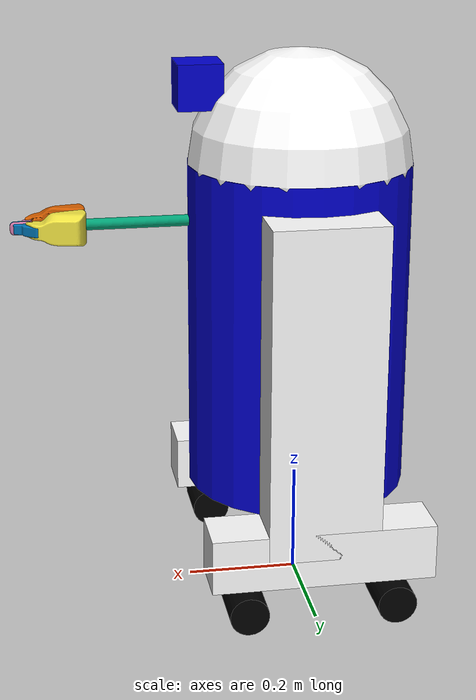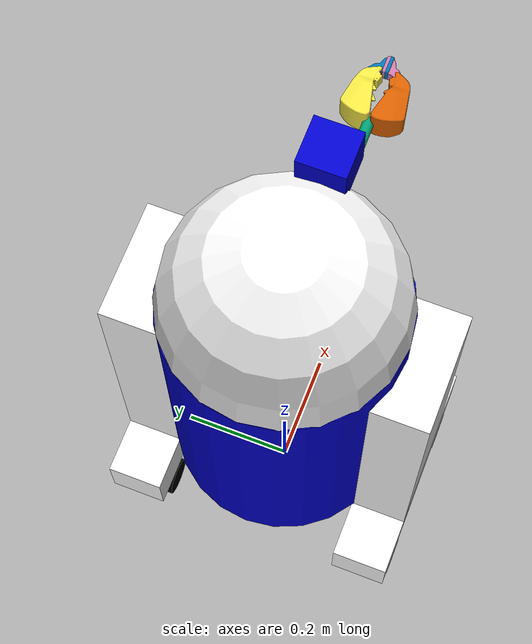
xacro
<?xml version="1.0"?>
<robot name="visual">

  <material name="blue">
    <color rgba="0 0 0.8 1"/>
  </material>
  <material name="black">
    <color rgba="0 0 0 1"/>
  </material>
  <material name="white">
    <color rgba="1 1 1 1"/>
  </material>

  <link name="base_link" />

  <joint name="base_to_body" type="fixed">
    <parent link="base_link"/>
    <child link="body_link"/>
    <origin xyz="0 0 0.5"/>
  </joint>

  <link name="body_link">
    <visual>
      <geometry>
        <cylinder length="0.6" radius="0.2"/>
      </geometry>
      <material name="blue"/>
    </visual>
    <collision>
      <geometry>
        <cylinder length="0.6" radius="0.2"/>
      </geometry>
    </collision>
    <inertial>
      <mass value="10"/>
      <inertia ixx="1e-3" ixy="0.0" ixz="0.0" iyy="1e-3" iyz="0.0" izz="1e-3"/>
    </inertial>
  </link>

  <link name="right_leg">
    <visual>
      <geometry>
        <box size="0.6 0.1 0.2"/>
      </geometry>
      <origin rpy="0 1.57075 0" xyz="0 0 -0.3"/>
      <material name="white"/>
    </visual>
    <collision>
      <geometry>
        <box size="0.6 0.1 0.2"/>
      </geometry>
      <origin rpy="0 1.57075 0" xyz="0 0 -0.3"/>
    </collision>
    <inertial>
      <mass value="1"/>
      <inertia ixx="1e-5" ixy="0.0" ixz="0.0" iyy="1e-5" iyz="0.0" izz="1e-5"/>
    </inertial>
  </link>

  <joint name="base_to_right_leg" type="fixed">
    <parent link="body_link"/>
    <child link="right_leg"/>
    <origin xyz="0 -0.22 0.25"/>
  </joint>

  <link name="right_base">
    <visual>
      <geometry>
        <box size="0.4 0.1 0.1"/>
      </geometry>
      <material name="white"/>
    </visual>
    <collision>
      <geometry>
        <box size="0.4 0.1 0.1"/>
      </geometry>
      <material name="white"/>
    </collision>
    <inertial>
      <mass value="1"/>
      <inertia ixx="1e-5" ixy="0.0" ixz="0.0" iyy="1e-5" iyz="0.0" izz="1e-5"/>
    </inertial>
  </link>

  <joint name="right_base_joint" type="fixed">
    <parent link="right_leg"/>
    <child link="right_base"/>
    <origin xyz="0 0 -0.6"/>
  </joint>

  <link name="right_front_wheel">
    <visual>
      <origin rpy="1.57075 0 0" xyz="0 0 0"/>
      <geometry>
        <cylinder length="0.1" radius="0.035"/>
      </geometry>
      <material name="black"/>
    </visual>
    <collision>
      <origin rpy="1.57075 0 0" xyz="0 0 0"/>
      <geometry>
        <cylinder length="0.1" radius="0.035"/>
      </geometry>
      <material name="black"/>
    </collision>
    <inertial>
      <mass value="1"/>
      <inertia ixx="1e-5" ixy="0.0" ixz="0.0" iyy="1e-5" iyz="0.0" izz="1e-5"/>
    </inertial>
 </link>

  <joint name="right_front_wheel_joint" type="continuous">
    <parent link="right_base"/>
    <child link="right_front_wheel"/>
    <origin rpy="0 0 0" xyz="0.133333333333 0 -0.1"/>
    <axis xyz="0 1 0"/>
  </joint>

  <link name="right_back_wheel">
    <visual>
      <origin rpy="1.57075 0 0" xyz="0 0 0"/>
      <geometry>
        <cylinder length="0.1" radius="0.035"/>
      </geometry>
      <material name="black"/>
    </visual>
    <collision>
      <origin rpy="1.57075 0 0" xyz="0 0 0"/>
      <geometry>
        <cylinder length="0.1" radius="0.035"/>
      </geometry>
    </collision>
    <inertial>
      <mass value="1"/>
      <inertia ixx="1e-5" ixy="0.0" ixz="0.0" iyy="1e-5" iyz="0.0" izz="1e-5"/>
    </inertial>

  </link>

  <joint name="right_back_wheel_joint" type="continuous">
    <parent link="right_base"/>
    <child link="right_back_wheel"/>
    <origin rpy="0 0 0" xyz="-0.133333333333 0 -0.1"/>
    <axis xyz="0 1 0"/>
  </joint>

  <link name="left_leg">
    <visual>
      <geometry>
        <box size="0.6 0.1 0.2"/>
      </geometry>
      <origin rpy="0 1.57075 0" xyz="0 0 -0.3"/>
      <material name="white"/>
    </visual>
    <collision>
      <geometry>
        <box size="0.6 0.1 0.2"/>
      </geometry>
      <origin rpy="0 1.57075 0" xyz="0 0 -0.3"/>
    </collision>
    <inertial>
      <mass value="1"/>
      <inertia ixx="1e-5" ixy="0.0" ixz="0.0" iyy="1e-5" iyz="0.0" izz="1e-5"/>
    </inertial>

  </link>

  <joint name="base_to_left_leg" type="fixed">
    <parent link="body_link"/>
    <child link="left_leg"/>
    <origin xyz="0 0.22 0.25"/>
  </joint>

  <link name="left_base">
    <visual>
      <geometry>
        <box size="0.4 0.1 0.1"/>
      </geometry>
      <material name="white"/>
    </visual>
    <collision>
      <geometry>
        <box size="0.4 0.1 0.1"/>
      </geometry>
    </collision>
    <inertial>
      <mass value="1"/>
      <inertia ixx="1e-5" ixy="0.0" ixz="0.0" iyy="1e-5" iyz="0.0" izz="1e-5"/>
    </inertial>

  </link>

  <joint name="left_base_joint" type="fixed">
    <parent link="left_leg"/>
    <child link="left_base"/>
    <origin xyz="0 0 -0.6"/>
  </joint>

  <link name="left_front_wheel">
    <visual>
      <origin rpy="1.57075 0 0" xyz="0 0 0"/>
      <geometry>
        <cylinder length="0.1" radius="0.035"/>
      </geometry>
      <material name="black"/>
    </visual>
    <collision>
      <origin rpy="1.57075 0 0" xyz="0 0 0"/>
      <geometry>
        <cylinder length="0.1" radius="0.035"/>
      </geometry>
    </collision>
    <inertial>
      <mass value="1"/>
      <inertia ixx="1e-5" ixy="0.0" ixz="0.0" iyy="1e-5" iyz="0.0" izz="1e-5"/>
    </inertial>

  </link>

  <joint name="left_front_wheel_joint" type="continuous">
    <parent link="left_base"/>
    <child link="left_front_wheel"/>
    <origin rpy="0 0 0" xyz="0.133333333333 0 -0.1"/>
    <axis xyz="0 1 0"/>
  </joint>

  <link name="left_back_wheel">
    <visual>
      <origin rpy="1.57075 0 0" xyz="0 0 0"/>
      <geometry>
        <cylinder length="0.1" radius="0.035"/>
      </geometry>
      <material name="black"/>
    </visual>
    <collision>
      <origin rpy="1.57075 0 0" xyz="0 0 0"/>
      <geometry>
        <cylinder length="0.1" radius="0.035"/>
      </geometry>
    </collision>
    <inertial>
      <mass value="1"/>
      <inertia ixx="1e-5" ixy="0.0" ixz="0.0" iyy="1e-5" iyz="0.0" izz="1e-5"/>
    </inertial>

  </link>

  <joint name="left_back_wheel_joint" type="continuous">
    <parent link="left_base"/>
    <child link="left_back_wheel"/>
    <origin rpy="0 0 0" xyz="-0.133333333333 0 -0.1"/>
    <axis xyz="0 1 0"/>
  </joint>

  <joint name="gripper_extension" type="fixed">
    <parent link="body_link"/>
    <child link="gripper_pole"/>
    <origin rpy="0 0 0" xyz="0.19 0 0.2"/>
  </joint>

  <link name="gripper_pole">
    <visual>
      <geometry>
        <cylinder length="0.2" radius="0.01"/>
      </geometry>
      <origin rpy="0 1.57075 0 " xyz="0.1 0 0"/>
    </visual>
    <collision>
      <geometry>
        <cylinder length="0.2" radius="0.01"/>
      </geometry>
      <origin rpy="0 1.57075 0 " xyz="0.1 0 0"/>
    </collision>
    <inertial>
      <mass value="1"/>
      <inertia ixx="1e-5" ixy="0.0" ixz="0.0" iyy="1e-5" iyz="0.0" izz="1e-5"/>
    </inertial>

  </link>

  <joint name="left_gripper_joint" type="fixed">
    <origin rpy="0 0 0" xyz="0.2 0.01 0"/>
    <parent link="gripper_pole"/>
    <child link="left_gripper"/>
  </joint>

  <link name="left_gripper">
    <visual>
      <origin rpy="0.0 0 0" xyz="0 0 0"/>
      <geometry>
        <mesh filename="package://urdf_tutorial/meshes/l_finger.dae"/>
      </geometry>
    </visual>
    <collision>
      <origin rpy="0.0 0 0" xyz="0 0 0"/>
      <geometry>
        <mesh filename="package://urdf_tutorial/meshes/l_finger.dae"/>
      </geometry>
    </collision>
    <inertial>
      <mass value="1"/>
      <inertia ixx="1e-5" ixy="0.0" ixz="0.0" iyy="1e-5" iyz="0.0" izz="1e-5"/>
    </inertial>

  </link>

  <joint name="left_tip_joint" type="fixed">
    <parent link="left_gripper"/>
    <child link="left_tip"/>
  </joint>

  <link name="left_tip">
    <visual>
      <origin rpy="0.0 0 0" xyz="0.09137 0.00495 0"/>
      <geometry>
        <mesh filename="package://urdf_tutorial/meshes/l_finger_tip.dae"/>
      </geometry>
    </visual>
    <collision>
      <origin rpy="0.0 0 0" xyz="0.09137 0.00495 0"/>
      <geometry>
        <mesh filename="package://urdf_tutorial/meshes/l_finger_tip.dae"/>
      </geometry>
    </collision>
    <inertial>
      <mass value="1"/>
      <inertia ixx="1e-5" ixy="0.0" ixz="0.0" iyy="1e-5" iyz="0.0" izz="1e-5"/>
    </inertial>

  </link>

  <joint name="right_gripper_joint" type="fixed">
    <origin rpy="0 0 0" xyz="0.2 -0.01 0"/>
    <parent link="gripper_pole"/>
    <child link="right_gripper"/>
  </joint>

  <link name="right_gripper">
    <visual>
      <origin rpy="-3.1415 0 0" xyz="0 0 0"/>
      <geometry>
        <mesh filename="package://urdf_tutorial/meshes/l_finger.dae"/>
      </geometry>
    </visual>
    <collision>
      <origin rpy="-3.1415 0 0" xyz="0 0 0"/>
      <geometry>
        <mesh filename="package://urdf_tutorial/meshes/l_finger.dae"/>
      </geometry>
    </collision>
    <inertial>
      <mass value="1"/>
      <inertia ixx="1e-5" ixy="0.0" ixz="0.0" iyy="1e-5" iyz="0.0" izz="1e-5"/>
    </inertial>

  </link>

  <joint name="right_tip_joint" type="fixed">
    <parent link="right_gripper"/>
    <child link="right_tip"/>
  </joint>

  <link name="right_tip">
    <visual>
      <origin rpy="-3.1415 0 0" xyz="0.09137 0.00495 0"/>
      <geometry>
        <mesh filename="package://urdf_tutorial/meshes/l_finger_tip.dae"/>
      </geometry>
    </visual>
    <collision>
      <origin rpy="-3.1415 0 0" xyz="0.09137 0.00495 0"/>
      <geometry>
        <mesh filename="package://urdf_tutorial/meshes/l_finger_tip.dae"/>
      </geometry>
    </collision>
    <inertial>
      <mass value="1"/>
      <inertia ixx="1e-5" ixy="0.0" ixz="0.0" iyy="1e-5" iyz="0.0" izz="1e-5"/>
    </inertial>

  </link>

  <link name="head">
    <visual>
      <geometry>
        <sphere radius="0.2"/>
      </geometry>
      <material name="white"/>
    </visual>
    <collision>
      <geometry>
        <sphere radius="0.2"/>
      </geometry>
    </collision>
    <inertial>
      <mass value="1"/>
      <inertia ixx="1e-5" ixy="0.0" ixz="0.0" iyy="1e-5" iyz="0.0" izz="1e-5"/>
    </inertial>

  </link>
  <joint name="head_swivel" type="fixed">
    <parent link="body_link"/>
    <child link="head"/>
    <origin xyz="0 0 0.3"/>
  </joint>

  <link name="box">
    <visual>
      <geometry>
        <box size="0.08 0.08 0.08"/>
      </geometry>
      <material name="blue"/>
    </visual>
    <collision>
      <geometry>
        <box size="0.08 0.08 0.08"/>
      </geometry>
    </collision>
    <inertial>
      <mass value="1"/>
      <inertia ixx="1e-5" ixy="0.0" ixz="0.0" iyy="1e-5" iyz="0.0" izz="1e-5"/>
    </inertial>

  </link>

  <joint name="tobox" type="fixed">
    <parent link="head"/>
    <child link="box"/>
    <origin xyz="0.1814 0 0.1414"/>
  </joint>

    <transmission name="left_front_wheel_joint_transm">
      <type>transmission_interface/SimpleTransmission</type>
      <joint name="left_front_wheel_joint">
        <hardwareInterface>hardware_interface/VelocityJointInterface</hardwareInterface>
      </joint>
      <actuator name="left_front_wheel_joint_motor">
        <mechanicalReduction>1</mechanicalReduction>
        <hardwareInterface>hardware_interface/VelocityJointInterface</hardwareInterface>
      </actuator>
    </transmission>
    <gazebo reference="left_front_wheel">
      <material>Gazebo/Black</material>
      <mu1>1</mu1>
      <mu2>1</mu2>
      <dampingFactor>0.05</dampingFactor>
      <kp>20000000</kp>
      <kd>800000</kd>
    </gazebo>

    <transmission name="left_back_wheel_joint_transm">
      <type>transmission_interface/SimpleTransmission</type>
      <joint name="left_back_wheel_joint">
        <hardwareInterface>hardware_interface/VelocityJointInterface</hardwareInterface>
      </joint>
      <actuator name="left_back_wheel_joint_motor">
        <mechanicalReduction>1</mechanicalReduction>
        <hardwareInterface>hardware_interface/VelocityJointInterface</hardwareInterface>
      </actuator>
    </transmission>
    <gazebo reference="left_back_wheel">
      <material>Gazebo/Black</material>
      <mu1>1</mu1>
      <mu2>1</mu2>
      <dampingFactor>0.05</dampingFactor>
      <kp>20000000</kp>
      <kd>800000</kd>
    </gazebo>

    <transmission name="right_front_wheel_joint_transm">
      <type>transmission_interface/SimpleTransmission</type>
      <joint name="right_front_wheel_joint">
        <hardwareInterface>hardware_interface/VelocityJointInterface</hardwareInterface>
      </joint>
      <actuator name="right_front_wheel_joint_motor">
        <mechanicalReduction>1</mechanicalReduction>
        <hardwareInterface>hardware_interface/VelocityJointInterface</hardwareInterface>
      </actuator>
    </transmission>
    <gazebo reference="right_front_wheel">
      <material>Gazebo/Black</material>
      <mu1>1</mu1>
      <mu2>1</mu2>
      <dampingFactor>0.05</dampingFactor>
      <kp>20000000</kp>
      <kd>800000</kd>
    </gazebo>

    <transmission name="right_back_wheel_joint_transm">
      <type>transmission_interface/SimpleTransmission</type>
      <joint name="right_back_wheel_joint">
        <hardwareInterface>hardware_interface/VelocityJointInterface</hardwareInterface>
      </joint>
      <actuator name="right_back_wheel_joint_motor">
        <mechanicalReduction>1</mechanicalReduction>
        <hardwareInterface>hardware_interface/VelocityJointInterface</hardwareInterface>
      </actuator>
    </transmission>
    <gazebo reference="right_back_wheel">
      <material>Gazebo/Black</material>
      <mu1>1</mu1>
      <mu2>1</mu2>
      <dampingFactor>0.05</dampingFactor>
      <kp>20000000</kp>
      <kd>800000</kd>
    </gazebo>

  <gazebo>
    <plugin name="gazebo_ros_control" filename="libgazebo_ros_control.so">
        <robotSimType>gazebo_ros_control/DefaultRobotHWSim</robotSimType>
        <legacyModeNS>true</legacyModeNS>
        <!-- Control period is recommended to be the same as the world simulation period -->
        <controlPeriod>0.001</controlPeriod>
    </plugin>
  </gazebo>

</robot>
